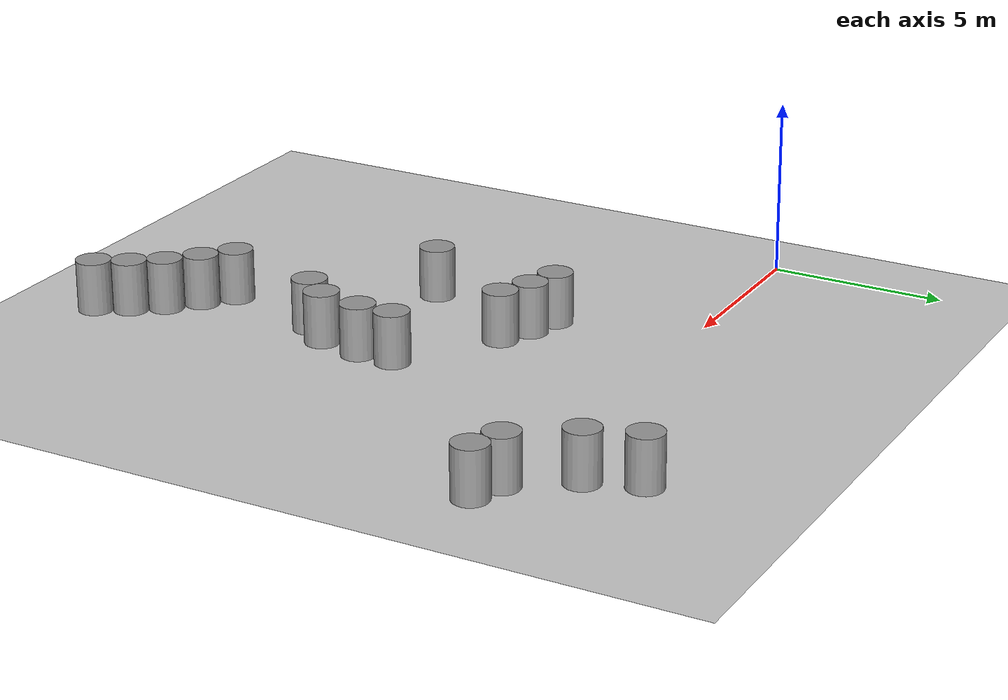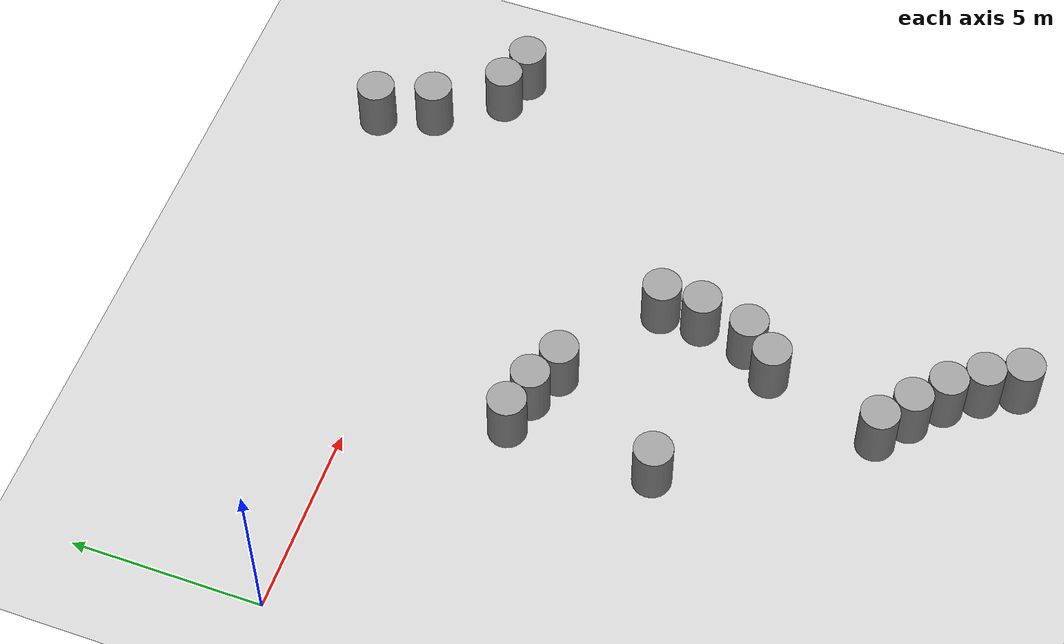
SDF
<sdf version="1.6">
 <world name="default">
  <model name="ground_plane">
   <static>1</static>
   <link name="link">
    <collision name="collision">
     <geometry><plane><normal>0 0 1</normal><size>100 100</size></plane></geometry>
     <surface><friction><ode><mu>100</mu><mu2>50</mu2></ode></friction></surface>
    </collision>
    <visual name="visual">
     <cast_shadows>0</cast_shadows>
     <geometry><plane><normal>0 0 1</normal><size>100 100</size></plane></geometry>
     <material>
      <script><uri>file://media/materials/scripts/gazebo.material</uri><name>Gazebo/Grey</name></script>
     </material>
    </visual>
   </link>
  </model>
  <model name="cylinder1.5m_clone">
   <link name="link">
    <inertial>
     <mass>1</mass>
     <inertia><ixx>0.145833</ixx><ixy>0</ixy><ixz>0</ixz><iyy>0.145833</iyy><iyz>0</iyz><izz>0.125</izz></inertia>
    </inertial>
    <pose>0 0 0.25 0 -0 0</pose>
    <visual name="visual">
     <geometry><cylinder><radius>0.5</radius><length>1.5</length></cylinder></geometry>
     <material>
      <script><name>Gazebo/Grey</name><uri>file://media/materials/scripts/gazebo.material</uri></script>
      <shader type="pixel"><normal_map>__default__</normal_map></shader>
      <ambient>0.3 0.3 0.3 1</ambient>
      <diffuse>0.7 0.7 0.7 1</diffuse>
      <specular>0.01 0.01 0.01 1</specular>
      <emissive>0 0 0 1</emissive>
     </material>
    </visual>
    <collision name="collision">
     <geometry><cylinder><radius>0.5</radius><length>1</length></cylinder></geometry>
     <surface>
      <friction>
       <ode><mu>1</mu><mu2>1</mu2><fdir1>0 0 0</fdir1><slip1>0</slip1><slip2>0</slip2></ode>
       <torsional>
        <coefficient>1</coefficient>
        <patch_radius>0</patch_radius>
        <surface_radius>0</surface_radius>
        <use_patch_radius>1</use_patch_radius>
        <ode><slip>0</slip></ode>
       </torsional>
      </friction>
      <bounce><restitution_coefficient>0</restitution_coefficient><threshold>1e+06</threshold></bounce>
      <contact>
       <collide_without_contact>0</collide_without_contact>
       <collide_without_contact_bitmask>1</collide_without_contact_bitmask>
       <collide_bitmask>1</collide_bitmask>
       <ode>
        <soft_cfm>0</soft_cfm>
        <soft_erp>0.2</soft_erp>
        <kp>1e+13</kp>
        <kd>1</kd>
        <max_vel>0.01</max_vel>
        <min_depth>0</min_depth>
       </ode>
       <bullet>
        <split_impulse>1</split_impulse>
        <split_impulse_penetration_threshold>-0.01</split_impulse_penetration_threshold>
        <soft_cfm>0</soft_cfm>
        <soft_erp>0.2</soft_erp>
        <kp>1e+13</kp>
        <kd>1</kd>
       </bullet>
      </contact>
     </surface>
    </collision>
   </link>
   <static>0</static>
   <pose>10.1837 -9.48569 0.5 0 -0 0</pose>
  </model>
  <model name="cylinder1.5m_clone_0">
   <link name="link">
    <inertial>
     <mass>1</mass>
     <inertia><ixx>0.145833</ixx><ixy>0</ixy><ixz>0</ixz><iyy>0.145833</iyy><iyz>0</iyz><izz>0.125</izz></inertia>
    </inertial>
    <pose>0 0 0.25 0 -0 0</pose>
    <visual name="visual">
     <geometry><cylinder><radius>0.5</radius><length>1.5</length></cylinder></geometry>
     <material>
      <script><name>Gazebo/Grey</name><uri>file://media/materials/scripts/gazebo.material</uri></script>
      <shader type="pixel"><normal_map>__default__</normal_map></shader>
      <ambient>0.3 0.3 0.3 1</ambient>
      <diffuse>0.7 0.7 0.7 1</diffuse>
      <specular>0.01 0.01 0.01 1</specular>
      <emissive>0 0 0 1</emissive>
     </material>
    </visual>
    <collision name="collision">
     <geometry><cylinder><radius>0.5</radius><length>1</length></cylinder></geometry>
     <surface>
      <friction>
       <ode><mu>1</mu><mu2>1</mu2><fdir1>0 0 0</fdir1><slip1>0</slip1><slip2>0</slip2></ode>
       <torsional>
        <coefficient>1</coefficient>
        <patch_radius>0</patch_radius>
        <surface_radius>0</surface_radius>
        <use_patch_radius>1</use_patch_radius>
        <ode><slip>0</slip></ode>
       </torsional>
      </friction>
      <bounce><restitution_coefficient>0</restitution_coefficient><threshold>1e+06</threshold></bounce>
      <contact>
       <collide_without_contact>0</collide_without_contact>
       <collide_without_contact_bitmask>1</collide_without_contact_bitmask>
       <collide_bitmask>1</collide_bitmask>
       <ode>
        <soft_cfm>0</soft_cfm>
        <soft_erp>0.2</soft_erp>
        <kp>1e+13</kp>
        <kd>1</kd>
        <max_vel>0.01</max_vel>
        <min_depth>0</min_depth>
       </ode>
       <bullet>
        <split_impulse>1</split_impulse>
        <split_impulse_penetration_threshold>-0.01</split_impulse_penetration_threshold>
        <soft_cfm>0</soft_cfm>
        <soft_erp>0.2</soft_erp>
        <kp>1e+13</kp>
        <kd>1</kd>
       </bullet>
      </contact>
     </surface>
    </collision>
   </link>
   <static>0</static>
   <pose>10.8166 -8.69771 0.5 0 -0 0</pose>
  </model>
  <model name="cylinder1.5m_clone_1">
   <link name="link">
    <inertial>
     <mass>1</mass>
     <inertia><ixx>0.145833</ixx><ixy>0</ixy><ixz>0</ixz><iyy>0.145833</iyy><iyz>0</iyz><izz>0.125</izz></inertia>
    </inertial>
    <pose>0 0 0.25 0 -0 0</pose>
    <visual name="visual">
     <geometry><cylinder><radius>0.5</radius><length>1.5</length></cylinder></geometry>
     <material>
      <script><name>Gazebo/Grey</name><uri>file://media/materials/scripts/gazebo.material</uri></script>
      <shader type="pixel"><normal_map>__default__</normal_map></shader>
      <ambient>0.3 0.3 0.3 1</ambient>
      <diffuse>0.7 0.7 0.7 1</diffuse>
      <specular>0.01 0.01 0.01 1</specular>
      <emissive>0 0 0 1</emissive>
     </material>
    </visual>
    <collision name="collision">
     <geometry><cylinder><radius>0.5</radius><length>1</length></cylinder></geometry>
     <surface>
      <friction>
       <ode><mu>1</mu><mu2>1</mu2><fdir1>0 0 0</fdir1><slip1>0</slip1><slip2>0</slip2></ode>
       <torsional>
        <coefficient>1</coefficient>
        <patch_radius>0</patch_radius>
        <surface_radius>0</surface_radius>
        <use_patch_radius>1</use_patch_radius>
        <ode><slip>0</slip></ode>
       </torsional>
      </friction>
      <bounce><restitution_coefficient>0</restitution_coefficient><threshold>1e+06</threshold></bounce>
      <contact>
       <collide_without_contact>0</collide_without_contact>
       <collide_without_contact_bitmask>1</collide_without_contact_bitmask>
       <collide_bitmask>1</collide_bitmask>
       <ode>
        <soft_cfm>0</soft_cfm>
        <soft_erp>0.2</soft_erp>
        <kp>1e+13</kp>
        <kd>1</kd>
        <max_vel>0.01</max_vel>
        <min_depth>0</min_depth>
       </ode>
       <bullet>
        <split_impulse>1</split_impulse>
        <split_impulse_penetration_threshold>-0.01</split_impulse_penetration_threshold>
        <soft_cfm>0</soft_cfm>
        <soft_erp>0.2</soft_erp>
        <kp>1e+13</kp>
        <kd>1</kd>
       </bullet>
      </contact>
     </surface>
    </collision>
   </link>
   <static>0</static>
   <pose>11.0955 -7.37475 0.5 0 -0 0</pose>
  </model>
  <model name="cylinder1.5m_clone_2">
   <link name="link">
    <inertial>
     <mass>1</mass>
     <inertia><ixx>0.145833</ixx><ixy>0</ixy><ixz>0</ixz><iyy>0.145833</iyy><iyz>0</iyz><izz>0.125</izz></inertia>
    </inertial>
    <pose>0 0 0.25 0 -0 0</pose>
    <visual name="visual">
     <geometry><cylinder><radius>0.5</radius><length>1.5</length></cylinder></geometry>
     <material>
      <script><name>Gazebo/Grey</name><uri>file://media/materials/scripts/gazebo.material</uri></script>
      <shader type="pixel"><normal_map>__default__</normal_map></shader>
      <ambient>0.3 0.3 0.3 1</ambient>
      <diffuse>0.7 0.7 0.7 1</diffuse>
      <specular>0.01 0.01 0.01 1</specular>
      <emissive>0 0 0 1</emissive>
     </material>
    </visual>
    <collision name="collision">
     <geometry><cylinder><radius>0.5</radius><length>1</length></cylinder></geometry>
     <surface>
      <friction>
       <ode><mu>1</mu><mu2>1</mu2><fdir1>0 0 0</fdir1><slip1>0</slip1><slip2>0</slip2></ode>
       <torsional>
        <coefficient>1</coefficient>
        <patch_radius>0</patch_radius>
        <surface_radius>0</surface_radius>
        <use_patch_radius>1</use_patch_radius>
        <ode><slip>0</slip></ode>
       </torsional>
      </friction>
      <bounce><restitution_coefficient>0</restitution_coefficient><threshold>1e+06</threshold></bounce>
      <contact>
       <collide_without_contact>0</collide_without_contact>
       <collide_without_contact_bitmask>1</collide_without_contact_bitmask>
       <collide_bitmask>1</collide_bitmask>
       <ode>
        <soft_cfm>0</soft_cfm>
        <soft_erp>0.2</soft_erp>
        <kp>1e+13</kp>
        <kd>1</kd>
        <max_vel>0.01</max_vel>
        <min_depth>0</min_depth>
       </ode>
       <bullet>
        <split_impulse>1</split_impulse>
        <split_impulse_penetration_threshold>-0.01</split_impulse_penetration_threshold>
        <soft_cfm>0</soft_cfm>
        <soft_erp>0.2</soft_erp>
        <kp>1e+13</kp>
        <kd>1</kd>
       </bullet>
      </contact>
     </surface>
    </collision>
   </link>
   <static>0</static>
   <pose>11.119 -6.30171 0.5 0 -0 0</pose>
  </model>
  <model name="cylinder1.5m_clone_9">
   <link name="link">
    <inertial>
     <mass>1</mass>
     <inertia><ixx>0.145833</ixx><ixy>0</ixy><ixz>0</ixz><iyy>0.145833</iyy><iyz>0</iyz><izz>0.125</izz></inertia>
    </inertial>
    <pose>0 0 0.25 0 -0 0</pose>
    <visual name="visual">
     <geometry><cylinder><radius>0.5</radius><length>1.5</length></cylinder></geometry>
     <material>
      <script><name>Gazebo/Grey</name><uri>file://media/materials/scripts/gazebo.material</uri></script>
      <shader type="pixel"><normal_map>__default__</normal_map></shader>
      <ambient>0.3 0.3 0.3 1</ambient>
      <diffuse>0.7 0.7 0.7 1</diffuse>
      <specular>0.01 0.01 0.01 1</specular>
      <emissive>0 0 0 1</emissive>
     </material>
    </visual>
    <collision name="collision">
     <geometry><cylinder><radius>0.5</radius><length>1</length></cylinder></geometry>
     <surface>
      <friction>
       <ode><mu>1</mu><mu2>1</mu2><fdir1>0 0 0</fdir1><slip1>0</slip1><slip2>0</slip2></ode>
       <torsional>
        <coefficient>1</coefficient>
        <patch_radius>0</patch_radius>
        <surface_radius>0</surface_radius>
        <use_patch_radius>1</use_patch_radius>
        <ode><slip>0</slip></ode>
       </torsional>
      </friction>
      <bounce><restitution_coefficient>0</restitution_coefficient><threshold>1e+06</threshold></bounce>
      <contact>
       <collide_without_contact>0</collide_without_contact>
       <collide_without_contact_bitmask>1</collide_without_contact_bitmask>
       <collide_bitmask>1</collide_bitmask>
       <ode>
        <soft_cfm>0</soft_cfm>
        <soft_erp>0.2</soft_erp>
        <kp>1e+13</kp>
        <kd>1</kd>
        <max_vel>0.01</max_vel>
        <min_depth>0</min_depth>
       </ode>
       <bullet>
        <split_impulse>1</split_impulse>
        <split_impulse_penetration_threshold>-0.01</split_impulse_penetration_threshold>
        <soft_cfm>0</soft_cfm>
        <soft_erp>0.2</soft_erp>
        <kp>1e+13</kp>
        <kd>1</kd>
       </bullet>
      </contact>
     </surface>
    </collision>
   </link>
   <static>0</static>
   <pose>9.30865 -12.508 0.5 0 -0 0</pose>
  </model>
  <model name="cylinder1.5m_clone_10">
   <link name="link">
    <inertial>
     <mass>1</mass>
     <inertia><ixx>0.145833</ixx><ixy>0</ixy><ixz>0</ixz><iyy>0.145833</iyy><iyz>0</iyz><izz>0.125</izz></inertia>
    </inertial>
    <pose>0 0 0.25 0 -0 0</pose>
    <visual name="visual">
     <geometry><cylinder><radius>0.5</radius><length>1.5</length></cylinder></geometry>
     <material>
      <script><name>Gazebo/Grey</name><uri>file://media/materials/scripts/gazebo.material</uri></script>
      <shader type="pixel"><normal_map>__default__</normal_map></shader>
      <ambient>0.3 0.3 0.3 1</ambient>
      <diffuse>0.7 0.7 0.7 1</diffuse>
      <specular>0.01 0.01 0.01 1</specular>
      <emissive>0 0 0 1</emissive>
     </material>
    </visual>
    <collision name="collision">
     <geometry><cylinder><radius>0.5</radius><length>1</length></cylinder></geometry>
     <surface>
      <friction>
       <ode><mu>1</mu><mu2>1</mu2><fdir1>0 0 0</fdir1><slip1>0</slip1><slip2>0</slip2></ode>
       <torsional>
        <coefficient>1</coefficient>
        <patch_radius>0</patch_radius>
        <surface_radius>0</surface_radius>
        <use_patch_radius>1</use_patch_radius>
        <ode><slip>0</slip></ode>
       </torsional>
      </friction>
      <bounce><restitution_coefficient>0</restitution_coefficient><threshold>1e+06</threshold></bounce>
      <contact>
       <collide_without_contact>0</collide_without_contact>
       <collide_without_contact_bitmask>1</collide_without_contact_bitmask>
       <collide_bitmask>1</collide_bitmask>
       <ode>
        <soft_cfm>0</soft_cfm>
        <soft_erp>0.2</soft_erp>
        <kp>1e+13</kp>
        <kd>1</kd>
        <max_vel>0.01</max_vel>
        <min_depth>0</min_depth>
       </ode>
       <bullet>
        <split_impulse>1</split_impulse>
        <split_impulse_penetration_threshold>-0.01</split_impulse_penetration_threshold>
        <soft_cfm>0</soft_cfm>
        <soft_erp>0.2</soft_erp>
        <kp>1e+13</kp>
        <kd>1</kd>
       </bullet>
      </contact>
     </surface>
    </collision>
   </link>
   <static>0</static>
   <pose>10.0906 -13.1479 0.5 0 -0 0</pose>
  </model>
  <model name="cylinder1.5m_clone_11">
   <link name="link">
    <inertial>
     <mass>1</mass>
     <inertia><ixx>0.145833</ixx><ixy>0</ixy><ixz>0</ixz><iyy>0.145833</iyy><iyz>0</iyz><izz>0.125</izz></inertia>
    </inertial>
    <pose>0 0 0.25 0 -0 0</pose>
    <visual name="visual">
     <geometry><cylinder><radius>0.5</radius><length>1.5</length></cylinder></geometry>
     <material>
      <script><name>Gazebo/Grey</name><uri>file://media/materials/scripts/gazebo.material</uri></script>
      <shader type="pixel"><normal_map>__default__</normal_map></shader>
      <ambient>0.3 0.3 0.3 1</ambient>
      <diffuse>0.7 0.7 0.7 1</diffuse>
      <specular>0.01 0.01 0.01 1</specular>
      <emissive>0 0 0 1</emissive>
     </material>
    </visual>
    <collision name="collision">
     <geometry><cylinder><radius>0.5</radius><length>1</length></cylinder></geometry>
     <surface>
      <friction>
       <ode><mu>1</mu><mu2>1</mu2><fdir1>0 0 0</fdir1><slip1>0</slip1><slip2>0</slip2></ode>
       <torsional>
        <coefficient>1</coefficient>
        <patch_radius>0</patch_radius>
        <surface_radius>0</surface_radius>
        <use_patch_radius>1</use_patch_radius>
        <ode><slip>0</slip></ode>
       </torsional>
      </friction>
      <bounce><restitution_coefficient>0</restitution_coefficient><threshold>1e+06</threshold></bounce>
      <contact>
       <collide_without_contact>0</collide_without_contact>
       <collide_without_contact_bitmask>1</collide_without_contact_bitmask>
       <collide_bitmask>1</collide_bitmask>
       <ode>
        <soft_cfm>0</soft_cfm>
        <soft_erp>0.2</soft_erp>
        <kp>1e+13</kp>
        <kd>1</kd>
        <max_vel>0.01</max_vel>
        <min_depth>0</min_depth>
       </ode>
       <bullet>
        <split_impulse>1</split_impulse>
        <split_impulse_penetration_threshold>-0.01</split_impulse_penetration_threshold>
        <soft_cfm>0</soft_cfm>
        <soft_erp>0.2</soft_erp>
        <kp>1e+13</kp>
        <kd>1</kd>
       </bullet>
      </contact>
     </surface>
    </collision>
   </link>
   <static>0</static>
   <pose>10.8414 -13.8387 0.5 0 -0 0</pose>
  </model>
  <model name="cylinder1.5m_clone_12">
   <link name="link">
    <inertial>
     <mass>1</mass>
     <inertia><ixx>0.145833</ixx><ixy>0</ixy><ixz>0</ixz><iyy>0.145833</iyy><iyz>0</iyz><izz>0.125</izz></inertia>
    </inertial>
    <pose>0 0 0.25 0 -0 0</pose>
    <visual name="visual">
     <geometry><cylinder><radius>0.5</radius><length>1.5</length></cylinder></geometry>
     <material>
      <script><name>Gazebo/Grey</name><uri>file://media/materials/scripts/gazebo.material</uri></script>
      <shader type="pixel"><normal_map>__default__</normal_map></shader>
      <ambient>0.3 0.3 0.3 1</ambient>
      <diffuse>0.7 0.7 0.7 1</diffuse>
      <specular>0.01 0.01 0.01 1</specular>
      <emissive>0 0 0 1</emissive>
     </material>
    </visual>
    <collision name="collision">
     <geometry><cylinder><radius>0.5</radius><length>1</length></cylinder></geometry>
     <surface>
      <friction>
       <ode><mu>1</mu><mu2>1</mu2><fdir1>0 0 0</fdir1><slip1>0</slip1><slip2>0</slip2></ode>
       <torsional>
        <coefficient>1</coefficient>
        <patch_radius>0</patch_radius>
        <surface_radius>0</surface_radius>
        <use_patch_radius>1</use_patch_radius>
        <ode><slip>0</slip></ode>
       </torsional>
      </friction>
      <bounce><restitution_coefficient>0</restitution_coefficient><threshold>1e+06</threshold></bounce>
      <contact>
       <collide_without_contact>0</collide_without_contact>
       <collide_without_contact_bitmask>1</collide_without_contact_bitmask>
       <collide_bitmask>1</collide_bitmask>
       <ode>
        <soft_cfm>0</soft_cfm>
        <soft_erp>0.2</soft_erp>
        <kp>1e+13</kp>
        <kd>1</kd>
        <max_vel>0.01</max_vel>
        <min_depth>0</min_depth>
       </ode>
       <bullet>
        <split_impulse>1</split_impulse>
        <split_impulse_penetration_threshold>-0.01</split_impulse_penetration_threshold>
        <soft_cfm>0</soft_cfm>
        <soft_erp>0.2</soft_erp>
        <kp>1e+13</kp>
        <kd>1</kd>
       </bullet>
      </contact>
     </surface>
    </collision>
   </link>
   <static>0</static>
   <pose>11.4164 -14.6361 0.5 0 -0 0</pose>
  </model>
  <model name="cylinder1.5m_clone_13">
   <link name="link">
    <inertial>
     <mass>1</mass>
     <inertia><ixx>0.145833</ixx><ixy>0</ixy><ixz>0</ixz><iyy>0.145833</iyy><iyz>0</iyz><izz>0.125</izz></inertia>
    </inertial>
    <pose>0 0 0.25 0 -0 0</pose>
    <visual name="visual">
     <geometry><cylinder><radius>0.5</radius><length>1.5</length></cylinder></geometry>
     <material>
      <script><name>Gazebo/Grey</name><uri>file://media/materials/scripts/gazebo.material</uri></script>
      <shader type="pixel"><normal_map>__default__</normal_map></shader>
      <ambient>0.3 0.3 0.3 1</ambient>
      <diffuse>0.7 0.7 0.7 1</diffuse>
      <specular>0.01 0.01 0.01 1</specular>
      <emissive>0 0 0 1</emissive>
     </material>
    </visual>
    <collision name="collision">
     <geometry><cylinder><radius>0.5</radius><length>1</length></cylinder></geometry>
     <surface>
      <friction>
       <ode><mu>1</mu><mu2>1</mu2><fdir1>0 0 0</fdir1><slip1>0</slip1><slip2>0</slip2></ode>
       <torsional>
        <coefficient>1</coefficient>
        <patch_radius>0</patch_radius>
        <surface_radius>0</surface_radius>
        <use_patch_radius>1</use_patch_radius>
        <ode><slip>0</slip></ode>
       </torsional>
      </friction>
      <bounce><restitution_coefficient>0</restitution_coefficient><threshold>1e+06</threshold></bounce>
      <contact>
       <collide_without_contact>0</collide_without_contact>
       <collide_without_contact_bitmask>1</collide_without_contact_bitmask>
       <collide_bitmask>1</collide_bitmask>
       <ode>
        <soft_cfm>0</soft_cfm>
        <soft_erp>0.2</soft_erp>
        <kp>1e+13</kp>
        <kd>1</kd>
        <max_vel>0.01</max_vel>
        <min_depth>0</min_depth>
       </ode>
       <bullet>
        <split_impulse>1</split_impulse>
        <split_impulse_penetration_threshold>-0.01</split_impulse_penetration_threshold>
        <soft_cfm>0</soft_cfm>
        <soft_erp>0.2</soft_erp>
        <kp>1e+13</kp>
        <kd>1</kd>
       </bullet>
      </contact>
     </surface>
    </collision>
   </link>
   <static>0</static>
   <pose>11.8663 -15.5149 0.5 0 -0 0</pose>
  </model>
  <model name="cylinder1.5m_clone_15">
   <link name="link">
    <inertial>
     <mass>1</mass>
     <inertia><ixx>0.145833</ixx><ixy>0</ixy><ixz>0</ixz><iyy>0.145833</iyy><iyz>0</iyz><izz>0.125</izz></inertia>
    </inertial>
    <pose>0 0 0.25 0 -0 0</pose>
    <visual name="visual">
     <geometry><cylinder><radius>0.5</radius><length>1.5</length></cylinder></geometry>
     <material>
      <script><name>Gazebo/Grey</name><uri>file://media/materials/scripts/gazebo.material</uri></script>
      <shader type="pixel"><normal_map>__default__</normal_map></shader>
      <ambient>0.3 0.3 0.3 1</ambient>
      <diffuse>0.7 0.7 0.7 1</diffuse>
      <specular>0.01 0.01 0.01 1</specular>
      <emissive>0 0 0 1</emissive>
     </material>
    </visual>
    <collision name="collision">
     <geometry><cylinder><radius>0.5</radius><length>1</length></cylinder></geometry>
     <surface>
      <friction>
       <ode><mu>1</mu><mu2>1</mu2><fdir1>0 0 0</fdir1><slip1>0</slip1><slip2>0</slip2></ode>
       <torsional>
        <coefficient>1</coefficient>
        <patch_radius>0</patch_radius>
        <surface_radius>0</surface_radius>
        <use_patch_radius>1</use_patch_radius>
        <ode><slip>0</slip></ode>
       </torsional>
      </friction>
      <bounce><restitution_coefficient>0</restitution_coefficient><threshold>1e+06</threshold></bounce>
      <contact>
       <collide_without_contact>0</collide_without_contact>
       <collide_without_contact_bitmask>1</collide_without_contact_bitmask>
       <collide_bitmask>1</collide_bitmask>
       <ode>
        <soft_cfm>0</soft_cfm>
        <soft_erp>0.2</soft_erp>
        <kp>1e+13</kp>
        <kd>1</kd>
        <max_vel>0.01</max_vel>
        <min_depth>0</min_depth>
       </ode>
       <bullet>
        <split_impulse>1</split_impulse>
        <split_impulse_penetration_threshold>-0.01</split_impulse_penetration_threshold>
        <soft_cfm>0</soft_cfm>
        <soft_erp>0.2</soft_erp>
        <kp>1e+13</kp>
        <kd>1</kd>
       </bullet>
      </contact>
     </surface>
    </collision>
   </link>
   <static>0</static>
   <pose>6.44106 -7.63357 0.5 0 -0 0</pose>
  </model>
  <model name="cylinder1.5m_clone_16">
   <link name="link">
    <inertial>
     <mass>1</mass>
     <inertia><ixx>0.145833</ixx><ixy>0</ixy><ixz>0</ixz><iyy>0.145833</iyy><iyz>0</iyz><izz>0.125</izz></inertia>
    </inertial>
    <pose>0 0 0.25 0 -0 0</pose>
    <visual name="visual">
     <geometry><cylinder><radius>0.5</radius><length>1.5</length></cylinder></geometry>
     <material>
      <script><name>Gazebo/Grey</name><uri>file://media/materials/scripts/gazebo.material</uri></script>
      <shader type="pixel"><normal_map>__default__</normal_map></shader>
      <ambient>0.3 0.3 0.3 1</ambient>
      <diffuse>0.7 0.7 0.7 1</diffuse>
      <specular>0.01 0.01 0.01 1</specular>
      <emissive>0 0 0 1</emissive>
     </material>
    </visual>
    <collision name="collision">
     <geometry><cylinder><radius>0.5</radius><length>1</length></cylinder></geometry>
     <surface>
      <friction>
       <ode><mu>1</mu><mu2>1</mu2><fdir1>0 0 0</fdir1><slip1>0</slip1><slip2>0</slip2></ode>
       <torsional>
        <coefficient>1</coefficient>
        <patch_radius>0</patch_radius>
        <surface_radius>0</surface_radius>
        <use_patch_radius>1</use_patch_radius>
        <ode><slip>0</slip></ode>
       </torsional>
      </friction>
      <bounce><restitution_coefficient>0</restitution_coefficient><threshold>1e+06</threshold></bounce>
      <contact>
       <collide_without_contact>0</collide_without_contact>
       <collide_without_contact_bitmask>1</collide_without_contact_bitmask>
       <collide_bitmask>1</collide_bitmask>
       <ode>
        <soft_cfm>0</soft_cfm>
        <soft_erp>0.2</soft_erp>
        <kp>1e+13</kp>
        <kd>1</kd>
        <max_vel>0.01</max_vel>
        <min_depth>0</min_depth>
       </ode>
       <bullet>
        <split_impulse>1</split_impulse>
        <split_impulse_penetration_threshold>-0.01</split_impulse_penetration_threshold>
        <soft_cfm>0</soft_cfm>
        <soft_erp>0.2</soft_erp>
        <kp>1e+13</kp>
        <kd>1</kd>
       </bullet>
      </contact>
     </surface>
    </collision>
   </link>
   <static>0</static>
   <pose>8.44852 -4.49112 0.5 0 -0 0</pose>
  </model>
  <model name="cylinder1.5m_clone_17">
   <link name="link">
    <inertial>
     <mass>1</mass>
     <inertia><ixx>0.145833</ixx><ixy>0</ixy><ixz>0</ixz><iyy>0.145833</iyy><iyz>0</iyz><izz>0.125</izz></inertia>
    </inertial>
    <pose>0 0 0.25 0 -0 0</pose>
    <visual name="visual">
     <geometry><cylinder><radius>0.5</radius><length>1.5</length></cylinder></geometry>
     <material>
      <script><name>Gazebo/Grey</name><uri>file://media/materials/scripts/gazebo.material</uri></script>
      <shader type="pixel"><normal_map>__default__</normal_map></shader>
      <ambient>0.3 0.3 0.3 1</ambient>
      <diffuse>0.7 0.7 0.7 1</diffuse>
      <specular>0.01 0.01 0.01 1</specular>
      <emissive>0 0 0 1</emissive>
     </material>
    </visual>
    <collision name="collision">
     <geometry><cylinder><radius>0.5</radius><length>1</length></cylinder></geometry>
     <surface>
      <friction>
       <ode><mu>1</mu><mu2>1</mu2><fdir1>0 0 0</fdir1><slip1>0</slip1><slip2>0</slip2></ode>
       <torsional>
        <coefficient>1</coefficient>
        <patch_radius>0</patch_radius>
        <surface_radius>0</surface_radius>
        <use_patch_radius>1</use_patch_radius>
        <ode><slip>0</slip></ode>
       </torsional>
      </friction>
      <bounce><restitution_coefficient>0</restitution_coefficient><threshold>1e+06</threshold></bounce>
      <contact>
       <collide_without_contact>0</collide_without_contact>
       <collide_without_contact_bitmask>1</collide_without_contact_bitmask>
       <collide_bitmask>1</collide_bitmask>
       <ode>
        <soft_cfm>0</soft_cfm>
        <soft_erp>0.2</soft_erp>
        <kp>1e+13</kp>
        <kd>1</kd>
        <max_vel>0.01</max_vel>
        <min_depth>0</min_depth>
       </ode>
       <bullet>
        <split_impulse>1</split_impulse>
        <split_impulse_penetration_threshold>-0.01</split_impulse_penetration_threshold>
        <soft_cfm>0</soft_cfm>
        <soft_erp>0.2</soft_erp>
        <kp>1e+13</kp>
        <kd>1</kd>
       </bullet>
      </contact>
     </surface>
    </collision>
   </link>
   <static>0</static>
   <pose>7.53495 -4.06373 0.5 0 -0 0</pose>
  </model>
  <model name="cylinder1.5m_clone_18">
   <link name="link">
    <inertial>
     <mass>1</mass>
     <inertia><ixx>0.145833</ixx><ixy>0</ixy><ixz>0</ixz><iyy>0.145833</iyy><iyz>0</iyz><izz>0.125</izz></inertia>
    </inertial>
    <pose>0 0 0.25 0 -0 0</pose>
    <visual name="visual">
     <geometry><cylinder><radius>0.5</radius><length>1.5</length></cylinder></geometry>
     <material>
      <script><name>Gazebo/Grey</name><uri>file://media/materials/scripts/gazebo.material</uri></script>
      <shader type="pixel"><normal_map>__default__</normal_map></shader>
      <ambient>0.3 0.3 0.3 1</ambient>
      <diffuse>0.7 0.7 0.7 1</diffuse>
      <specular>0.01 0.01 0.01 1</specular>
      <emissive>0 0 0 1</emissive>
     </material>
    </visual>
    <collision name="collision">
     <geometry><cylinder><radius>0.5</radius><length>1</length></cylinder></geometry>
     <surface>
      <friction>
       <ode><mu>1</mu><mu2>1</mu2><fdir1>0 0 0</fdir1><slip1>0</slip1><slip2>0</slip2></ode>
       <torsional>
        <coefficient>1</coefficient>
        <patch_radius>0</patch_radius>
        <surface_radius>0</surface_radius>
        <use_patch_radius>1</use_patch_radius>
        <ode><slip>0</slip></ode>
       </torsional>
      </friction>
      <bounce><restitution_coefficient>0</restitution_coefficient><threshold>1e+06</threshold></bounce>
      <contact>
       <collide_without_contact>0</collide_without_contact>
       <collide_without_contact_bitmask>1</collide_without_contact_bitmask>
       <collide_bitmask>1</collide_bitmask>
       <ode>
        <soft_cfm>0</soft_cfm>
        <soft_erp>0.2</soft_erp>
        <kp>1e+13</kp>
        <kd>1</kd>
        <max_vel>0.01</max_vel>
        <min_depth>0</min_depth>
       </ode>
       <bullet>
        <split_impulse>1</split_impulse>
        <split_impulse_penetration_threshold>-0.01</split_impulse_penetration_threshold>
        <soft_cfm>0</soft_cfm>
        <soft_erp>0.2</soft_erp>
        <kp>1e+13</kp>
        <kd>1</kd>
       </bullet>
      </contact>
     </surface>
    </collision>
   </link>
   <static>0</static>
   <pose>6.58408 -3.79736 0.5 0 -0 0</pose>
  </model>
  <model name="cylinder1.5m_clone_19">
   <link name="link">
    <inertial>
     <mass>1</mass>
     <inertia><ixx>0.145833</ixx><ixy>0</ixy><ixz>0</ixz><iyy>0.145833</iyy><iyz>0</iyz><izz>0.125</izz></inertia>
    </inertial>
    <pose>0 0 0.25 0 -0 0</pose>
    <visual name="visual">
     <geometry><cylinder><radius>0.5</radius><length>1.5</length></cylinder></geometry>
     <material>
      <script><name>Gazebo/Grey</name><uri>file://media/materials/scripts/gazebo.material</uri></script>
      <shader type="pixel"><normal_map>__default__</normal_map></shader>
      <ambient>0.3 0.3 0.3 1</ambient>
      <diffuse>0.7 0.7 0.7 1</diffuse>
      <specular>0.01 0.01 0.01 1</specular>
      <emissive>0 0 0 1</emissive>
     </material>
    </visual>
    <collision name="collision">
     <geometry><cylinder><radius>0.5</radius><length>1</length></cylinder></geometry>
     <surface>
      <friction>
       <ode><mu>1</mu><mu2>1</mu2><fdir1>0 0 0</fdir1><slip1>0</slip1><slip2>0</slip2></ode>
       <torsional>
        <coefficient>1</coefficient>
        <patch_radius>0</patch_radius>
        <surface_radius>0</surface_radius>
        <use_patch_radius>1</use_patch_radius>
        <ode><slip>0</slip></ode>
       </torsional>
      </friction>
      <bounce><restitution_coefficient>0</restitution_coefficient><threshold>1e+06</threshold></bounce>
      <contact>
       <collide_without_contact>0</collide_without_contact>
       <collide_without_contact_bitmask>1</collide_without_contact_bitmask>
       <collide_bitmask>1</collide_bitmask>
       <ode>
        <soft_cfm>0</soft_cfm>
        <soft_erp>0.2</soft_erp>
        <kp>1e+13</kp>
        <kd>1</kd>
        <max_vel>0.01</max_vel>
        <min_depth>0</min_depth>
       </ode>
       <bullet>
        <split_impulse>1</split_impulse>
        <split_impulse_penetration_threshold>-0.01</split_impulse_penetration_threshold>
        <soft_cfm>0</soft_cfm>
        <soft_erp>0.2</soft_erp>
        <kp>1e+13</kp>
        <kd>1</kd>
       </bullet>
      </contact>
     </surface>
    </collision>
   </link>
   <static>0</static>
   <pose>16.2895 -0.110544 0.5 0 -0 0</pose>
  </model>
  <model name="cylinder1.5m_clone_20">
   <link name="link">
    <inertial>
     <mass>1</mass>
     <inertia><ixx>0.145833</ixx><ixy>0</ixy><ixz>0</ixz><iyy>0.145833</iyy><iyz>0</iyz><izz>0.125</izz></inertia>
    </inertial>
    <pose>0 0 0.25 0 -0 0</pose>
    <visual name="visual">
     <geometry><cylinder><radius>0.5</radius><length>1.5</length></cylinder></geometry>
     <material>
      <script><name>Gazebo/Grey</name><uri>file://media/materials/scripts/gazebo.material</uri></script>
      <shader type="pixel"><normal_map>__default__</normal_map></shader>
      <ambient>0.3 0.3 0.3 1</ambient>
      <diffuse>0.7 0.7 0.7 1</diffuse>
      <specular>0.01 0.01 0.01 1</specular>
      <emissive>0 0 0 1</emissive>
     </material>
    </visual>
    <collision name="collision">
     <geometry><cylinder><radius>0.5</radius><length>1</length></cylinder></geometry>
     <surface>
      <friction>
       <ode><mu>1</mu><mu2>1</mu2><fdir1>0 0 0</fdir1><slip1>0</slip1><slip2>0</slip2></ode>
       <torsional>
        <coefficient>1</coefficient>
        <patch_radius>0</patch_radius>
        <surface_radius>0</surface_radius>
        <use_patch_radius>1</use_patch_radius>
        <ode><slip>0</slip></ode>
       </torsional>
      </friction>
      <bounce><restitution_coefficient>0</restitution_coefficient><threshold>1e+06</threshold></bounce>
      <contact>
       <collide_without_contact>0</collide_without_contact>
       <collide_without_contact_bitmask>1</collide_without_contact_bitmask>
       <collide_bitmask>1</collide_bitmask>
       <ode>
        <soft_cfm>0</soft_cfm>
        <soft_erp>0.2</soft_erp>
        <kp>1e+13</kp>
        <kd>1</kd>
        <max_vel>0.01</max_vel>
        <min_depth>0</min_depth>
       </ode>
       <bullet>
        <split_impulse>1</split_impulse>
        <split_impulse_penetration_threshold>-0.01</split_impulse_penetration_threshold>
        <soft_cfm>0</soft_cfm>
        <soft_erp>0.2</soft_erp>
        <kp>1e+13</kp>
        <kd>1</kd>
       </bullet>
      </contact>
     </surface>
    </collision>
   </link>
   <static>0</static>
   <pose>17.2135 -0.448839 0.5 0 -0 0</pose>
  </model>
  <model name="cylinder1.5m_clone_21">
   <link name="link">
    <inertial>
     <mass>1</mass>
     <inertia><ixx>0.145833</ixx><ixy>0</ixy><ixz>0</ixz><iyy>0.145833</iyy><iyz>0</iyz><izz>0.125</izz></inertia>
    </inertial>
    <pose>0 0 0.25 0 -0 0</pose>
    <visual name="visual">
     <geometry><cylinder><radius>0.5</radius><length>1.5</length></cylinder></geometry>
     <material>
      <script><name>Gazebo/Grey</name><uri>file://media/materials/scripts/gazebo.material</uri></script>
      <shader type="pixel"><normal_map>__default__</normal_map></shader>
      <ambient>0.3 0.3 0.3 1</ambient>
      <diffuse>0.7 0.7 0.7 1</diffuse>
      <specular>0.01 0.01 0.01 1</specular>
      <emissive>0 0 0 1</emissive>
     </material>
    </visual>
    <collision name="collision">
     <geometry><cylinder><radius>0.5</radius><length>1</length></cylinder></geometry>
     <surface>
      <friction>
       <ode><mu>1</mu><mu2>1</mu2><fdir1>0 0 0</fdir1><slip1>0</slip1><slip2>0</slip2></ode>
       <torsional>
        <coefficient>1</coefficient>
        <patch_radius>0</patch_radius>
        <surface_radius>0</surface_radius>
        <use_patch_radius>1</use_patch_radius>
        <ode><slip>0</slip></ode>
       </torsional>
      </friction>
      <bounce><restitution_coefficient>0</restitution_coefficient><threshold>1e+06</threshold></bounce>
      <contact>
       <collide_without_contact>0</collide_without_contact>
       <collide_without_contact_bitmask>1</collide_without_contact_bitmask>
       <collide_bitmask>1</collide_bitmask>
       <ode>
        <soft_cfm>0</soft_cfm>
        <soft_erp>0.2</soft_erp>
        <kp>1e+13</kp>
        <kd>1</kd>
        <max_vel>0.01</max_vel>
        <min_depth>0</min_depth>
       </ode>
       <bullet>
        <split_impulse>1</split_impulse>
        <split_impulse_penetration_threshold>-0.01</split_impulse_penetration_threshold>
        <soft_cfm>0</soft_cfm>
        <soft_erp>0.2</soft_erp>
        <kp>1e+13</kp>
        <kd>1</kd>
       </bullet>
      </contact>
     </surface>
    </collision>
   </link>
   <static>0</static>
   <pose>15.1863 1.49279 0.5 0 -0 0</pose>
  </model>
  <model name="cylinder1.5m_clone_22">
   <link name="link">
    <inertial>
     <mass>1</mass>
     <inertia><ixx>0.145833</ixx><ixy>0</ixy><ixz>0</ixz><iyy>0.145833</iyy><iyz>0</iyz><izz>0.125</izz></inertia>
    </inertial>
    <pose>0 0 0.25 0 -0 0</pose>
    <visual name="visual">
     <geometry><cylinder><radius>0.5</radius><length>1.5</length></cylinder></geometry>
     <material>
      <script><name>Gazebo/Grey</name><uri>file://media/materials/scripts/gazebo.material</uri></script>
      <shader type="pixel"><normal_map>__default__</normal_map></shader>
      <ambient>0.3 0.3 0.3 1</ambient>
      <diffuse>0.7 0.7 0.7 1</diffuse>
      <specular>0.01 0.01 0.01 1</specular>
      <emissive>0 0 0 1</emissive>
     </material>
    </visual>
    <collision name="collision">
     <geometry><cylinder><radius>0.5</radius><length>1</length></cylinder></geometry>
     <surface>
      <friction>
       <ode><mu>1</mu><mu2>1</mu2><fdir1>0 0 0</fdir1><slip1>0</slip1><slip2>0</slip2></ode>
       <torsional>
        <coefficient>1</coefficient>
        <patch_radius>0</patch_radius>
        <surface_radius>0</surface_radius>
        <use_patch_radius>1</use_patch_radius>
        <ode><slip>0</slip></ode>
       </torsional>
      </friction>
      <bounce><restitution_coefficient>0</restitution_coefficient><threshold>1e+06</threshold></bounce>
      <contact>
       <collide_without_contact>0</collide_without_contact>
       <collide_without_contact_bitmask>1</collide_without_contact_bitmask>
       <collide_bitmask>1</collide_bitmask>
       <ode>
        <soft_cfm>0</soft_cfm>
        <soft_erp>0.2</soft_erp>
        <kp>1e+13</kp>
        <kd>1</kd>
        <max_vel>0.01</max_vel>
        <min_depth>0</min_depth>
       </ode>
       <bullet>
        <split_impulse>1</split_impulse>
        <split_impulse_penetration_threshold>-0.01</split_impulse_penetration_threshold>
        <soft_cfm>0</soft_cfm>
        <soft_erp>0.2</soft_erp>
        <kp>1e+13</kp>
        <kd>1</kd>
       </bullet>
      </contact>
     </surface>
    </collision>
   </link>
   <static>0</static>
   <pose>14.6808 2.93816 0.5 0 -0 0</pose>
  </model>
 </world>
</sdf>
